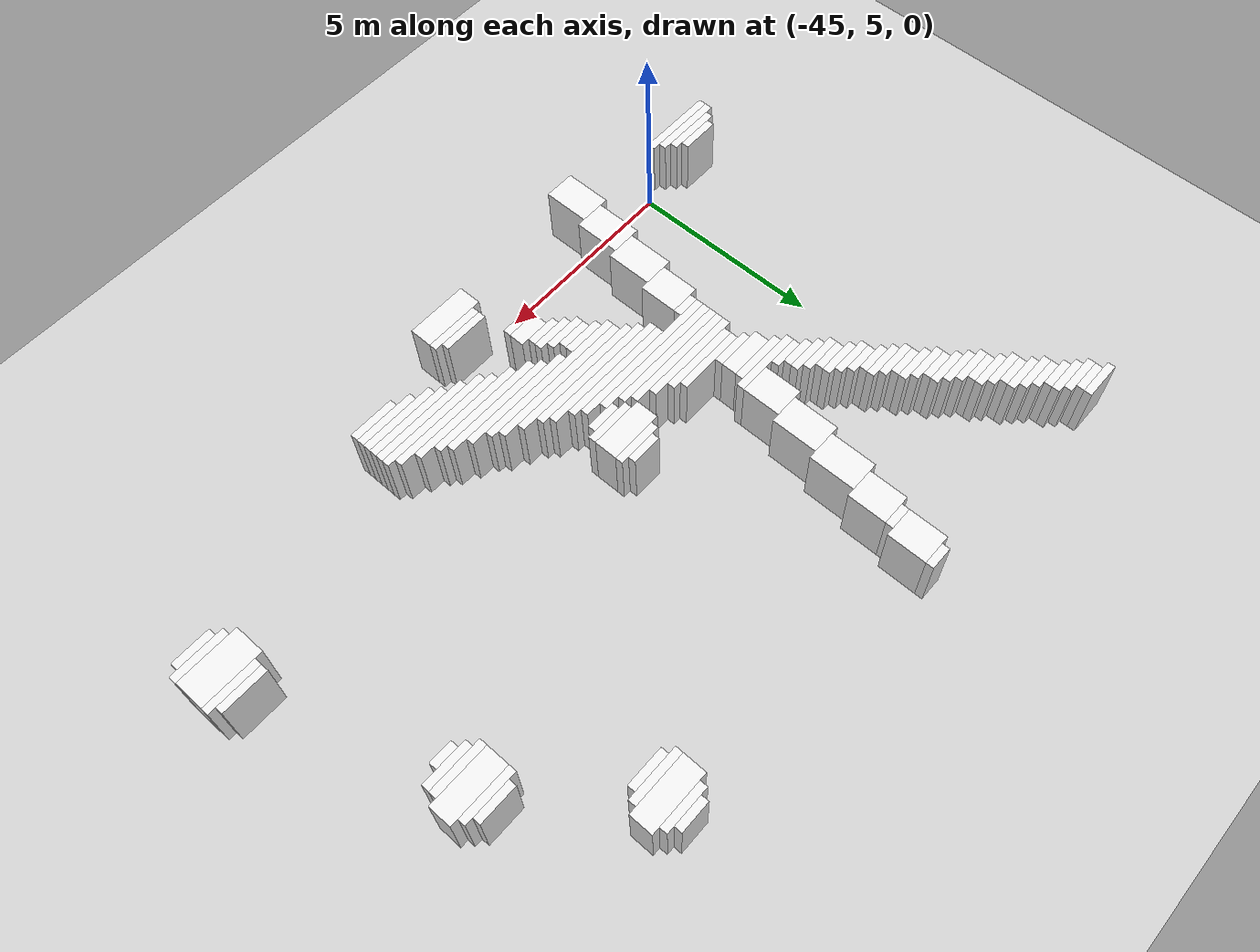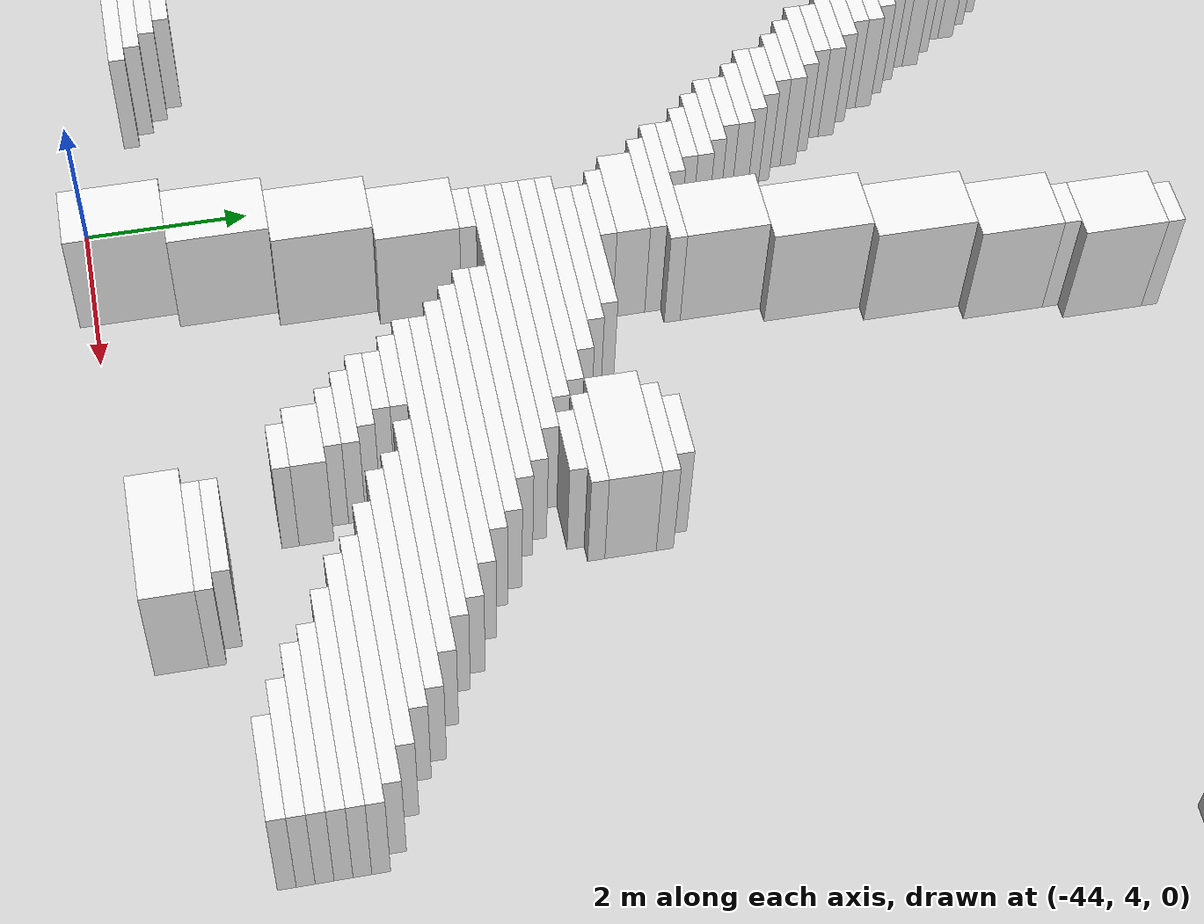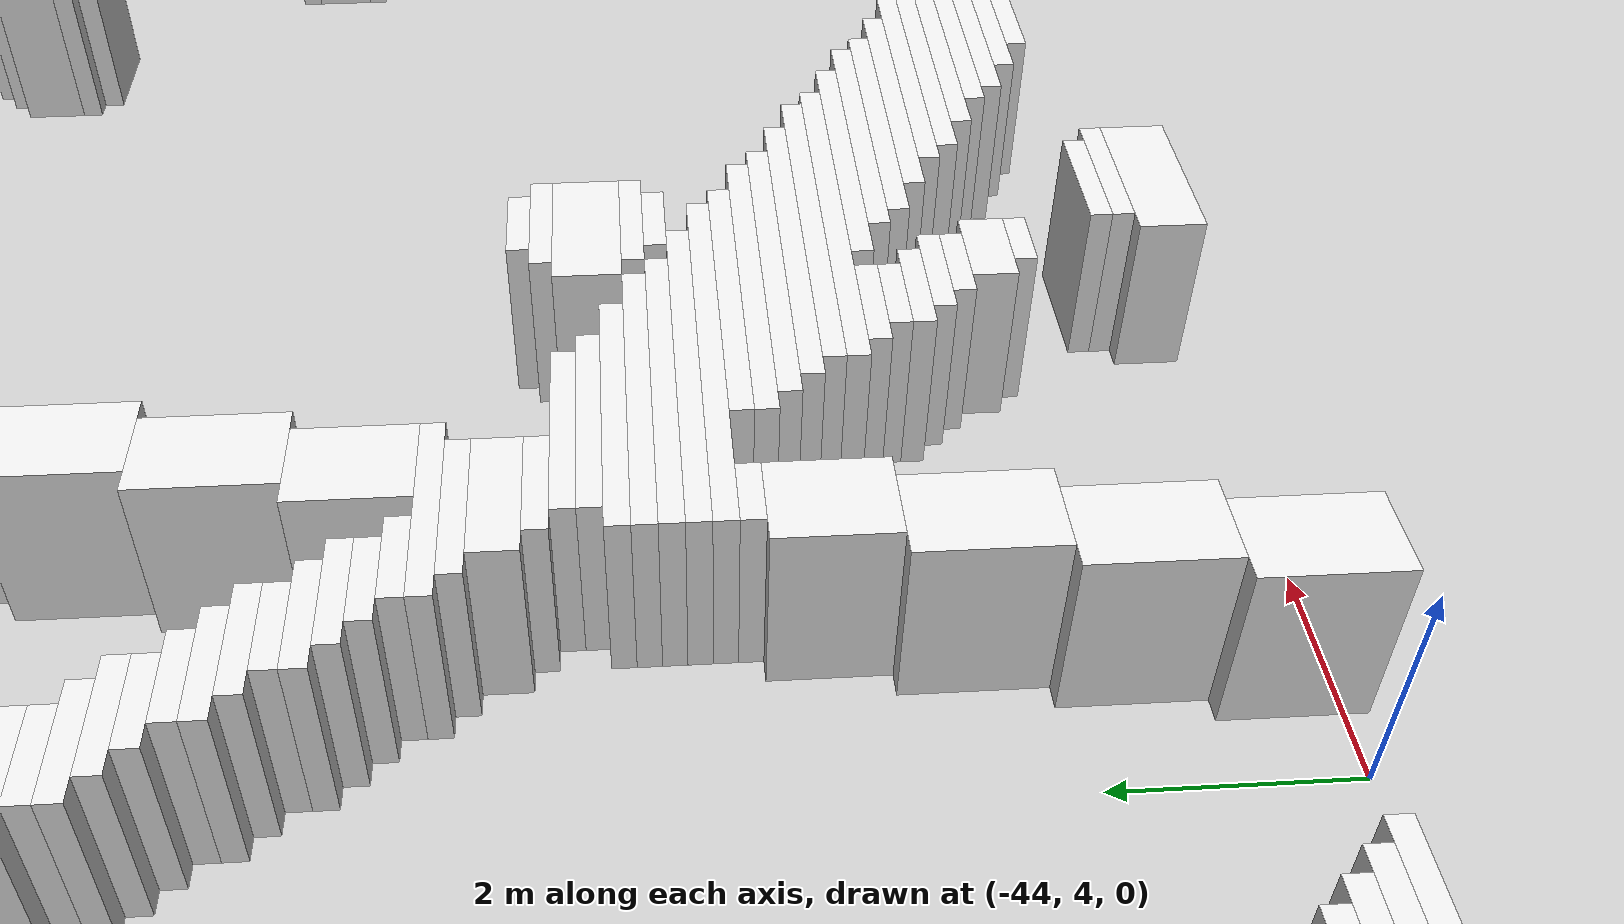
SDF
<sdf version="1.7">
 <world name="default">
  <model name="ground_plane">
   <static>1</static>
   <link name="link">
    <collision name="collision">
     <geometry><plane><normal>0 0 1</normal><size>120 120</size></plane></geometry>
    </collision>
    <visual name="visual">
     <geometry><plane><normal>0 0 1</normal><size>120 120</size></plane></geometry>
     <material>
      <script><uri>file://media/materials/scripts/gazebo.material</uri><name>Gazebo/Grey</name></script>
     </material>
    </visual>
   </link>
  </model>
  <model name="random_complex_02_model">
   <static>1</static>
   <link name="obs_1319">
    <pose>-46.9000 16.9000 0.8000 0 0 0</pose>
    <collision name="obs_1319_col"><geometry><box><size>1.0000 0.2000 1.6000</size></box></geometry></collision>
    <visual name="obs_1319_vis">
     <geometry><box><size>1.0000 0.2000 1.6000</size></box></geometry>
     <material>
      <script><uri>file://media/materials/scripts/gazebo.material</uri><name>Gazebo/White</name></script>
     </material>
    </visual>
   </link>
   <link name="obs_1325">
    <pose>-46.8000 16.7000 0.8000 0 0 0</pose>
    <collision name="obs_1325_col"><geometry><box><size>0.8000 0.2000 1.6000</size></box></geometry></collision>
    <visual name="obs_1325_vis">
     <geometry><box><size>0.8000 0.2000 1.6000</size></box></geometry>
     <material>
      <script><uri>file://media/materials/scripts/gazebo.material</uri><name>Gazebo/White</name></script>
     </material>
    </visual>
   </link>
   <link name="obs_1326">
    <pose>-40.9000 16.7000 0.8000 0 0 0</pose>
    <collision name="obs_1326_col"><geometry><box><size>0.6000 0.2000 1.6000</size></box></geometry></collision>
    <visual name="obs_1326_vis">
     <geometry><box><size>0.6000 0.2000 1.6000</size></box></geometry>
     <material>
      <script><uri>file://media/materials/scripts/gazebo.material</uri><name>Gazebo/White</name></script>
     </material>
    </visual>
   </link>
   <link name="obs_1333">
    <pose>-46.7000 16.5000 0.8000 0 0 0</pose>
    <collision name="obs_1333_col"><geometry><box><size>1.0000 0.2000 1.6000</size></box></geometry></collision>
    <visual name="obs_1333_vis">
     <geometry><box><size>1.0000 0.2000 1.6000</size></box></geometry>
     <material>
      <script><uri>file://media/materials/scripts/gazebo.material</uri><name>Gazebo/White</name></script>
     </material>
    </visual>
   </link>
   <link name="obs_1339">
    <pose>-46.5000 16.3000 0.8000 0 0 0</pose>
    <collision name="obs_1339_col"><geometry><box><size>1.0000 0.2000 1.6000</size></box></geometry></collision>
    <visual name="obs_1339_vis">
     <geometry><box><size>1.0000 0.2000 1.6000</size></box></geometry>
     <material>
      <script><uri>file://media/materials/scripts/gazebo.material</uri><name>Gazebo/White</name></script>
     </material>
    </visual>
   </link>
   <link name="obs_1340">
    <pose>-33.4000 16.3000 0.8000 0 0 0</pose>
    <collision name="obs_1340_col"><geometry><box><size>0.8000 0.2000 1.6000</size></box></geometry></collision>
    <visual name="obs_1340_vis">
     <geometry><box><size>0.8000 0.2000 1.6000</size></box></geometry>
     <material>
      <script><uri>file://media/materials/scripts/gazebo.material</uri><name>Gazebo/White</name></script>
     </material>
    </visual>
   </link>
   <link name="obs_1346">
    <pose>-46.4000 16.1000 0.8000 0 0 0</pose>
    <collision name="obs_1346_col"><geometry><box><size>0.8000 0.2000 1.6000</size></box></geometry></collision>
    <visual name="obs_1346_vis">
     <geometry><box><size>0.8000 0.2000 1.6000</size></box></geometry>
     <material>
      <script><uri>file://media/materials/scripts/gazebo.material</uri><name>Gazebo/White</name></script>
     </material>
    </visual>
   </link>
   <link name="obs_1347">
    <pose>-33.4000 16.1000 0.8000 0 0 0</pose>
    <collision name="obs_1347_col"><geometry><box><size>1.2000 0.2000 1.6000</size></box></geometry></collision>
    <visual name="obs_1347_vis">
     <geometry><box><size>1.2000 0.2000 1.6000</size></box></geometry>
     <material>
      <script><uri>file://media/materials/scripts/gazebo.material</uri><name>Gazebo/White</name></script>
     </material>
    </visual>
   </link>
   <link name="obs_1352">
    <pose>-46.2000 15.9000 0.8000 0 0 0</pose>
    <collision name="obs_1352_col"><geometry><box><size>0.8000 0.2000 1.6000</size></box></geometry></collision>
    <visual name="obs_1352_vis">
     <geometry><box><size>0.8000 0.2000 1.6000</size></box></geometry>
     <material>
      <script><uri>file://media/materials/scripts/gazebo.material</uri><name>Gazebo/White</name></script>
     </material>
    </visual>
   </link>
   <link name="obs_1356">
    <pose>-41.0000 16.1000 0.8000 0 0 0</pose>
    <collision name="obs_1356_col"><geometry><box><size>0.8000 1.0000 1.6000</size></box></geometry></collision>
    <visual name="obs_1356_vis">
     <geometry><box><size>0.8000 1.0000 1.6000</size></box></geometry>
     <material>
      <script><uri>file://media/materials/scripts/gazebo.material</uri><name>Gazebo/White</name></script>
     </material>
    </visual>
   </link>
   <link name="obs_1358">
    <pose>-46.1000 15.7000 0.8000 0 0 0</pose>
    <collision name="obs_1358_col"><geometry><box><size>1.0000 0.2000 1.6000</size></box></geometry></collision>
    <visual name="obs_1358_vis">
     <geometry><box><size>1.0000 0.2000 1.6000</size></box></geometry>
     <material>
      <script><uri>file://media/materials/scripts/gazebo.material</uri><name>Gazebo/White</name></script>
     </material>
    </visual>
   </link>
   <link name="obs_1361">
    <pose>-33.4000 15.7000 0.8000 0 0 0</pose>
    <collision name="obs_1361_col"><geometry><box><size>1.6000 0.6000 1.6000</size></box></geometry></collision>
    <visual name="obs_1361_vis">
     <geometry><box><size>1.6000 0.6000 1.6000</size></box></geometry>
     <material>
      <script><uri>file://media/materials/scripts/gazebo.material</uri><name>Gazebo/White</name></script>
     </material>
    </visual>
   </link>
   <link name="obs_1363">
    <pose>-45.9000 15.5000 0.8000 0 0 0</pose>
    <collision name="obs_1363_col"><geometry><box><size>1.0000 0.2000 1.6000</size></box></geometry></collision>
    <visual name="obs_1363_vis">
     <geometry><box><size>1.0000 0.2000 1.6000</size></box></geometry>
     <material>
      <script><uri>file://media/materials/scripts/gazebo.material</uri><name>Gazebo/White</name></script>
     </material>
    </visual>
   </link>
   <link name="obs_1364">
    <pose>-41.1000 15.5000 0.8000 0 0 0</pose>
    <collision name="obs_1364_col"><geometry><box><size>0.6000 0.2000 1.6000</size></box></geometry></collision>
    <visual name="obs_1364_vis">
     <geometry><box><size>0.6000 0.2000 1.6000</size></box></geometry>
     <material>
      <script><uri>file://media/materials/scripts/gazebo.material</uri><name>Gazebo/White</name></script>
     </material>
    </visual>
   </link>
   <link name="obs_1369">
    <pose>-45.8000 15.3000 0.8000 0 0 0</pose>
    <collision name="obs_1369_col"><geometry><box><size>0.8000 0.2000 1.6000</size></box></geometry></collision>
    <visual name="obs_1369_vis">
     <geometry><box><size>0.8000 0.2000 1.6000</size></box></geometry>
     <material>
      <script><uri>file://media/materials/scripts/gazebo.material</uri><name>Gazebo/White</name></script>
     </material>
    </visual>
   </link>
   <link name="obs_1370">
    <pose>-33.5000 15.3000 0.8000 0 0 0</pose>
    <collision name="obs_1370_col"><geometry><box><size>1.4000 0.2000 1.6000</size></box></geometry></collision>
    <visual name="obs_1370_vis">
     <geometry><box><size>1.4000 0.2000 1.6000</size></box></geometry>
     <material>
      <script><uri>file://media/materials/scripts/gazebo.material</uri><name>Gazebo/White</name></script>
     </material>
    </visual>
   </link>
   <link name="obs_1374">
    <pose>-45.7000 15.1000 0.8000 0 0 0</pose>
    <collision name="obs_1374_col"><geometry><box><size>1.0000 0.2000 1.6000</size></box></geometry></collision>
    <visual name="obs_1374_vis">
     <geometry><box><size>1.0000 0.2000 1.6000</size></box></geometry>
     <material>
      <script><uri>file://media/materials/scripts/gazebo.material</uri><name>Gazebo/White</name></script>
     </material>
    </visual>
   </link>
   <link name="obs_1375">
    <pose>-33.5000 15.1000 0.8000 0 0 0</pose>
    <collision name="obs_1375_col"><geometry><box><size>1.0000 0.2000 1.6000</size></box></geometry></collision>
    <visual name="obs_1375_vis">
     <geometry><box><size>1.0000 0.2000 1.6000</size></box></geometry>
     <material>
      <script><uri>file://media/materials/scripts/gazebo.material</uri><name>Gazebo/White</name></script>
     </material>
    </visual>
   </link>
   <link name="obs_1383">
    <pose>-45.5000 14.9000 0.8000 0 0 0</pose>
    <collision name="obs_1383_col"><geometry><box><size>1.0000 0.2000 1.6000</size></box></geometry></collision>
    <visual name="obs_1383_vis">
     <geometry><box><size>1.0000 0.2000 1.6000</size></box></geometry>
     <material>
      <script><uri>file://media/materials/scripts/gazebo.material</uri><name>Gazebo/White</name></script>
     </material>
    </visual>
   </link>
   <link name="obs_1388">
    <pose>-45.4000 14.7000 0.8000 0 0 0</pose>
    <collision name="obs_1388_col"><geometry><box><size>0.8000 0.2000 1.6000</size></box></geometry></collision>
    <visual name="obs_1388_vis">
     <geometry><box><size>0.8000 0.2000 1.6000</size></box></geometry>
     <material>
      <script><uri>file://media/materials/scripts/gazebo.material</uri><name>Gazebo/White</name></script>
     </material>
    </visual>
   </link>
   <link name="obs_1392">
    <pose>-41.2000 14.9000 0.8000 0 0 0</pose>
    <collision name="obs_1392_col"><geometry><box><size>0.8000 1.0000 1.6000</size></box></geometry></collision>
    <visual name="obs_1392_vis">
     <geometry><box><size>0.8000 1.0000 1.6000</size></box></geometry>
     <material>
      <script><uri>file://media/materials/scripts/gazebo.material</uri><name>Gazebo/White</name></script>
     </material>
    </visual>
   </link>
   <link name="obs_1394">
    <pose>-45.3000 14.5000 0.8000 0 0 0</pose>
    <collision name="obs_1394_col"><geometry><box><size>1.0000 0.2000 1.6000</size></box></geometry></collision>
    <visual name="obs_1394_vis">
     <geometry><box><size>1.0000 0.2000 1.6000</size></box></geometry>
     <material>
      <script><uri>file://media/materials/scripts/gazebo.material</uri><name>Gazebo/White</name></script>
     </material>
    </visual>
   </link>
   <link name="obs_1402">
    <pose>-45.1000 14.3000 0.8000 0 0 0</pose>
    <collision name="obs_1402_col"><geometry><box><size>1.0000 0.2000 1.6000</size></box></geometry></collision>
    <visual name="obs_1402_vis">
     <geometry><box><size>1.0000 0.2000 1.6000</size></box></geometry>
     <material>
      <script><uri>file://media/materials/scripts/gazebo.material</uri><name>Gazebo/White</name></script>
     </material>
    </visual>
   </link>
   <link name="obs_1408">
    <pose>-44.9000 14.1000 0.8000 0 0 0</pose>
    <collision name="obs_1408_col"><geometry><box><size>1.0000 0.2000 1.6000</size></box></geometry></collision>
    <visual name="obs_1408_vis">
     <geometry><box><size>1.0000 0.2000 1.6000</size></box></geometry>
     <material>
      <script><uri>file://media/materials/scripts/gazebo.material</uri><name>Gazebo/White</name></script>
     </material>
    </visual>
   </link>
   <link name="obs_1417">
    <pose>-44.8000 13.9000 0.8000 0 0 0</pose>
    <collision name="obs_1417_col"><geometry><box><size>0.8000 0.2000 1.6000</size></box></geometry></collision>
    <visual name="obs_1417_vis">
     <geometry><box><size>0.8000 0.2000 1.6000</size></box></geometry>
     <material>
      <script><uri>file://media/materials/scripts/gazebo.material</uri><name>Gazebo/White</name></script>
     </material>
    </visual>
   </link>
   <link name="obs_1422">
    <pose>-44.7000 13.7000 0.8000 0 0 0</pose>
    <collision name="obs_1422_col"><geometry><box><size>1.0000 0.2000 1.6000</size></box></geometry></collision>
    <visual name="obs_1422_vis">
     <geometry><box><size>1.0000 0.2000 1.6000</size></box></geometry>
     <material>
      <script><uri>file://media/materials/scripts/gazebo.material</uri><name>Gazebo/White</name></script>
     </material>
    </visual>
   </link>
   <link name="obs_1429">
    <pose>-44.5000 13.5000 0.8000 0 0 0</pose>
    <collision name="obs_1429_col"><geometry><box><size>1.0000 0.2000 1.6000</size></box></geometry></collision>
    <visual name="obs_1429_vis">
     <geometry><box><size>1.0000 0.2000 1.6000</size></box></geometry>
     <material>
      <script><uri>file://media/materials/scripts/gazebo.material</uri><name>Gazebo/White</name></script>
     </material>
    </visual>
   </link>
   <link name="obs_1431">
    <pose>-41.4000 13.8000 0.8000 0 0 0</pose>
    <collision name="obs_1431_col"><geometry><box><size>0.8000 1.2000 1.6000</size></box></geometry></collision>
    <visual name="obs_1431_vis">
     <geometry><box><size>0.8000 1.2000 1.6000</size></box></geometry>
     <material>
      <script><uri>file://media/materials/scripts/gazebo.material</uri><name>Gazebo/White</name></script>
     </material>
    </visual>
   </link>
   <link name="obs_1434">
    <pose>-44.4000 13.3000 0.8000 0 0 0</pose>
    <collision name="obs_1434_col"><geometry><box><size>0.8000 0.2000 1.6000</size></box></geometry></collision>
    <visual name="obs_1434_vis">
     <geometry><box><size>0.8000 0.2000 1.6000</size></box></geometry>
     <material>
      <script><uri>file://media/materials/scripts/gazebo.material</uri><name>Gazebo/White</name></script>
     </material>
    </visual>
   </link>
   <link name="obs_1435">
    <pose>-31.1000 13.3000 0.8000 0 0 0</pose>
    <collision name="obs_1435_col"><geometry><box><size>1.0000 0.2000 1.6000</size></box></geometry></collision>
    <visual name="obs_1435_vis">
     <geometry><box><size>1.0000 0.2000 1.6000</size></box></geometry>
     <material>
      <script><uri>file://media/materials/scripts/gazebo.material</uri><name>Gazebo/White</name></script>
     </material>
    </visual>
   </link>
   <link name="obs_1438">
    <pose>-44.3000 13.1000 0.8000 0 0 0</pose>
    <collision name="obs_1438_col"><geometry><box><size>1.0000 0.2000 1.6000</size></box></geometry></collision>
    <visual name="obs_1438_vis">
     <geometry><box><size>1.0000 0.2000 1.6000</size></box></geometry>
     <material>
      <script><uri>file://media/materials/scripts/gazebo.material</uri><name>Gazebo/White</name></script>
     </material>
    </visual>
   </link>
   <link name="obs_1439">
    <pose>-31.1000 13.1000 0.8000 0 0 0</pose>
    <collision name="obs_1439_col"><geometry><box><size>1.4000 0.2000 1.6000</size></box></geometry></collision>
    <visual name="obs_1439_vis">
     <geometry><box><size>1.4000 0.2000 1.6000</size></box></geometry>
     <material>
      <script><uri>file://media/materials/scripts/gazebo.material</uri><name>Gazebo/White</name></script>
     </material>
    </visual>
   </link>
   <link name="obs_1445">
    <pose>-44.1000 12.9000 0.8000 0 0 0</pose>
    <collision name="obs_1445_col"><geometry><box><size>1.0000 0.2000 1.6000</size></box></geometry></collision>
    <visual name="obs_1445_vis">
     <geometry><box><size>1.0000 0.2000 1.6000</size></box></geometry>
     <material>
      <script><uri>file://media/materials/scripts/gazebo.material</uri><name>Gazebo/White</name></script>
     </material>
    </visual>
   </link>
   <link name="obs_1448">
    <pose>-44.0000 12.7000 0.8000 0 0 0</pose>
    <collision name="obs_1448_col"><geometry><box><size>0.8000 0.2000 1.6000</size></box></geometry></collision>
    <visual name="obs_1448_vis">
     <geometry><box><size>0.8000 0.2000 1.6000</size></box></geometry>
     <material>
      <script><uri>file://media/materials/scripts/gazebo.material</uri><name>Gazebo/White</name></script>
     </material>
    </visual>
   </link>
   <link name="obs_1453">
    <pose>-31.0000 12.7000 0.8000 0 0 0</pose>
    <collision name="obs_1453_col"><geometry><box><size>1.6000 0.6000 1.6000</size></box></geometry></collision>
    <visual name="obs_1453_vis">
     <geometry><box><size>1.6000 0.6000 1.6000</size></box></geometry>
     <material>
      <script><uri>file://media/materials/scripts/gazebo.material</uri><name>Gazebo/White</name></script>
     </material>
    </visual>
   </link>
   <link name="obs_1455">
    <pose>-43.8000 12.5000 0.8000 0 0 0</pose>
    <collision name="obs_1455_col"><geometry><box><size>0.8000 0.2000 1.6000</size></box></geometry></collision>
    <visual name="obs_1455_vis">
     <geometry><box><size>0.8000 0.2000 1.6000</size></box></geometry>
     <material>
      <script><uri>file://media/materials/scripts/gazebo.material</uri><name>Gazebo/White</name></script>
     </material>
    </visual>
   </link>
   <link name="obs_1460">
    <pose>-43.7000 12.3000 0.8000 0 0 0</pose>
    <collision name="obs_1460_col"><geometry><box><size>1.0000 0.2000 1.6000</size></box></geometry></collision>
    <visual name="obs_1460_vis">
     <geometry><box><size>1.0000 0.2000 1.6000</size></box></geometry>
     <material>
      <script><uri>file://media/materials/scripts/gazebo.material</uri><name>Gazebo/White</name></script>
     </material>
    </visual>
   </link>
   <link name="obs_1461">
    <pose>-31.1000 12.3000 0.8000 0 0 0</pose>
    <collision name="obs_1461_col"><geometry><box><size>1.4000 0.2000 1.6000</size></box></geometry></collision>
    <visual name="obs_1461_vis">
     <geometry><box><size>1.4000 0.2000 1.6000</size></box></geometry>
     <material>
      <script><uri>file://media/materials/scripts/gazebo.material</uri><name>Gazebo/White</name></script>
     </material>
    </visual>
   </link>
   <link name="obs_1465">
    <pose>-41.6000 12.6000 0.8000 0 0 0</pose>
    <collision name="obs_1465_col"><geometry><box><size>0.8000 1.2000 1.6000</size></box></geometry></collision>
    <visual name="obs_1465_vis">
     <geometry><box><size>0.8000 1.2000 1.6000</size></box></geometry>
     <material>
      <script><uri>file://media/materials/scripts/gazebo.material</uri><name>Gazebo/White</name></script>
     </material>
    </visual>
   </link>
   <link name="obs_1467">
    <pose>-43.5000 12.1000 0.8000 0 0 0</pose>
    <collision name="obs_1467_col"><geometry><box><size>1.0000 0.2000 1.6000</size></box></geometry></collision>
    <visual name="obs_1467_vis">
     <geometry><box><size>1.0000 0.2000 1.6000</size></box></geometry>
     <material>
      <script><uri>file://media/materials/scripts/gazebo.material</uri><name>Gazebo/White</name></script>
     </material>
    </visual>
   </link>
   <link name="obs_1468">
    <pose>-31.0000 12.1000 0.8000 0 0 0</pose>
    <collision name="obs_1468_col"><geometry><box><size>1.2000 0.2000 1.6000</size></box></geometry></collision>
    <visual name="obs_1468_vis">
     <geometry><box><size>1.2000 0.2000 1.6000</size></box></geometry>
     <material>
      <script><uri>file://media/materials/scripts/gazebo.material</uri><name>Gazebo/White</name></script>
     </material>
    </visual>
   </link>
   <link name="obs_1477">
    <pose>-43.4000 11.9000 0.8000 0 0 0</pose>
    <collision name="obs_1477_col"><geometry><box><size>0.8000 0.2000 1.6000</size></box></geometry></collision>
    <visual name="obs_1477_vis">
     <geometry><box><size>0.8000 0.2000 1.6000</size></box></geometry>
     <material>
      <script><uri>file://media/materials/scripts/gazebo.material</uri><name>Gazebo/White</name></script>
     </material>
    </visual>
   </link>
   <link name="obs_1478">
    <pose>-31.1000 11.9000 0.8000 0 0 0</pose>
    <collision name="obs_1478_col"><geometry><box><size>0.6000 0.2000 1.6000</size></box></geometry></collision>
    <visual name="obs_1478_vis">
     <geometry><box><size>0.6000 0.2000 1.6000</size></box></geometry>
     <material>
      <script><uri>file://media/materials/scripts/gazebo.material</uri><name>Gazebo/White</name></script>
     </material>
    </visual>
   </link>
   <link name="obs_1486">
    <pose>-43.3000 11.7000 0.8000 0 0 0</pose>
    <collision name="obs_1486_col"><geometry><box><size>1.0000 0.2000 1.6000</size></box></geometry></collision>
    <visual name="obs_1486_vis">
     <geometry><box><size>1.0000 0.2000 1.6000</size></box></geometry>
     <material>
      <script><uri>file://media/materials/scripts/gazebo.material</uri><name>Gazebo/White</name></script>
     </material>
    </visual>
   </link>
   <link name="obs_1493">
    <pose>-43.1000 11.5000 0.8000 0 0 0</pose>
    <collision name="obs_1493_col"><geometry><box><size>1.0000 0.2000 1.6000</size></box></geometry></collision>
    <visual name="obs_1493_vis">
     <geometry><box><size>1.0000 0.2000 1.6000</size></box></geometry>
     <material>
      <script><uri>file://media/materials/scripts/gazebo.material</uri><name>Gazebo/White</name></script>
     </material>
    </visual>
   </link>
   <link name="obs_1496">
    <pose>-43.0000 11.3000 0.8000 0 0 0</pose>
    <collision name="obs_1496_col"><geometry><box><size>0.8000 0.2000 1.6000</size></box></geometry></collision>
    <visual name="obs_1496_vis">
     <geometry><box><size>0.8000 0.2000 1.6000</size></box></geometry>
     <material>
      <script><uri>file://media/materials/scripts/gazebo.material</uri><name>Gazebo/White</name></script>
     </material>
    </visual>
   </link>
   <link name="obs_1499">
    <pose>-41.8000 11.5000 0.8000 0 0 0</pose>
    <collision name="obs_1499_col"><geometry><box><size>0.8000 1.0000 1.6000</size></box></geometry></collision>
    <visual name="obs_1499_vis">
     <geometry><box><size>0.8000 1.0000 1.6000</size></box></geometry>
     <material>
      <script><uri>file://media/materials/scripts/gazebo.material</uri><name>Gazebo/White</name></script>
     </material>
    </visual>
   </link>
   <link name="obs_1503">
    <pose>-42.8000 11.1000 0.8000 0 0 0</pose>
    <collision name="obs_1503_col"><geometry><box><size>0.8000 0.2000 1.6000</size></box></geometry></collision>
    <visual name="obs_1503_vis">
     <geometry><box><size>0.8000 0.2000 1.6000</size></box></geometry>
     <material>
      <script><uri>file://media/materials/scripts/gazebo.material</uri><name>Gazebo/White</name></script>
     </material>
    </visual>
   </link>
   <link name="obs_1507">
    <pose>-42.3000 10.9000 0.8000 0 0 0</pose>
    <collision name="obs_1507_col"><geometry><box><size>1.8000 0.2000 1.6000</size></box></geometry></collision>
    <visual name="obs_1507_vis">
     <geometry><box><size>1.8000 0.2000 1.6000</size></box></geometry>
     <material>
      <script><uri>file://media/materials/scripts/gazebo.material</uri><name>Gazebo/White</name></script>
     </material>
    </visual>
   </link>
   <link name="obs_1511">
    <pose>-42.3000 10.7000 0.8000 0 0 0</pose>
    <collision name="obs_1511_col"><geometry><box><size>1.4000 0.2000 1.6000</size></box></geometry></collision>
    <visual name="obs_1511_vis">
     <geometry><box><size>1.4000 0.2000 1.6000</size></box></geometry>
     <material>
      <script><uri>file://media/materials/scripts/gazebo.material</uri><name>Gazebo/White</name></script>
     </material>
    </visual>
   </link>
   <link name="obs_1524">
    <pose>-42.2000 10.4000 0.8000 0 0 0</pose>
    <collision name="obs_1524_col"><geometry><box><size>1.2000 0.4000 1.6000</size></box></geometry></collision>
    <visual name="obs_1524_vis">
     <geometry><box><size>1.2000 0.4000 1.6000</size></box></geometry>
     <material>
      <script><uri>file://media/materials/scripts/gazebo.material</uri><name>Gazebo/White</name></script>
     </material>
    </visual>
   </link>
   <link name="obs_1525">
    <pose>-38.8000 10.3000 0.8000 0 0 0</pose>
    <collision name="obs_1525_col"><geometry><box><size>0.8000 0.2000 1.6000</size></box></geometry></collision>
    <visual name="obs_1525_vis">
     <geometry><box><size>0.8000 0.2000 1.6000</size></box></geometry>
     <material>
      <script><uri>file://media/materials/scripts/gazebo.material</uri><name>Gazebo/White</name></script>
     </material>
    </visual>
   </link>
   <link name="obs_1533">
    <pose>-42.1000 10.1000 0.8000 0 0 0</pose>
    <collision name="obs_1533_col"><geometry><box><size>1.0000 0.2000 1.6000</size></box></geometry></collision>
    <visual name="obs_1533_vis">
     <geometry><box><size>1.0000 0.2000 1.6000</size></box></geometry>
     <material>
      <script><uri>file://media/materials/scripts/gazebo.material</uri><name>Gazebo/White</name></script>
     </material>
    </visual>
   </link>
   <link name="obs_1534">
    <pose>-38.8000 10.1000 0.8000 0 0 0</pose>
    <collision name="obs_1534_col"><geometry><box><size>1.2000 0.2000 1.6000</size></box></geometry></collision>
    <visual name="obs_1534_vis">
     <geometry><box><size>1.2000 0.2000 1.6000</size></box></geometry>
     <material>
      <script><uri>file://media/materials/scripts/gazebo.material</uri><name>Gazebo/White</name></script>
     </material>
    </visual>
   </link>
   <link name="obs_1541">
    <pose>-41.5000 9.9000 0.8000 0 0 0</pose>
    <collision name="obs_1541_col"><geometry><box><size>1.8000 0.2000 1.6000</size></box></geometry></collision>
    <visual name="obs_1541_vis">
     <geometry><box><size>1.8000 0.2000 1.6000</size></box></geometry>
     <material>
      <script><uri>file://media/materials/scripts/gazebo.material</uri><name>Gazebo/White</name></script>
     </material>
    </visual>
   </link>
   <link name="obs_1551">
    <pose>-41.4000 9.7000 0.8000 0 0 0</pose>
    <collision name="obs_1551_col"><geometry><box><size>2.0000 0.2000 1.6000</size></box></geometry></collision>
    <visual name="obs_1551_vis">
     <geometry><box><size>2.0000 0.2000 1.6000</size></box></geometry>
     <material>
      <script><uri>file://media/materials/scripts/gazebo.material</uri><name>Gazebo/White</name></script>
     </material>
    </visual>
   </link>
   <link name="obs_1560">
    <pose>-38.9000 9.7000 0.8000 0 0 0</pose>
    <collision name="obs_1560_col"><geometry><box><size>1.4000 0.6000 1.6000</size></box></geometry></collision>
    <visual name="obs_1560_vis">
     <geometry><box><size>1.4000 0.6000 1.6000</size></box></geometry>
     <material>
      <script><uri>file://media/materials/scripts/gazebo.material</uri><name>Gazebo/White</name></script>
     </material>
    </visual>
   </link>
   <link name="obs_1561">
    <pose>-41.3000 9.5000 0.8000 0 0 0</pose>
    <collision name="obs_1561_col"><geometry><box><size>2.6000 0.2000 1.6000</size></box></geometry></collision>
    <visual name="obs_1561_vis">
     <geometry><box><size>2.6000 0.2000 1.6000</size></box></geometry>
     <material>
      <script><uri>file://media/materials/scripts/gazebo.material</uri><name>Gazebo/White</name></script>
     </material>
    </visual>
   </link>
   <link name="obs_1568">
    <pose>-41.1000 9.3000 0.8000 0 0 0</pose>
    <collision name="obs_1568_col"><geometry><box><size>3.0000 0.2000 1.6000</size></box></geometry></collision>
    <visual name="obs_1568_vis">
     <geometry><box><size>3.0000 0.2000 1.6000</size></box></geometry>
     <material>
      <script><uri>file://media/materials/scripts/gazebo.material</uri><name>Gazebo/White</name></script>
     </material>
    </visual>
   </link>
   <link name="obs_1569">
    <pose>-38.8000 9.3000 0.8000 0 0 0</pose>
    <collision name="obs_1569_col"><geometry><box><size>1.2000 0.2000 1.6000</size></box></geometry></collision>
    <visual name="obs_1569_vis">
     <geometry><box><size>1.2000 0.2000 1.6000</size></box></geometry>
     <material>
      <script><uri>file://media/materials/scripts/gazebo.material</uri><name>Gazebo/White</name></script>
     </material>
    </visual>
   </link>
   <link name="obs_1577">
    <pose>-41.0000 9.1000 0.8000 0 0 0</pose>
    <collision name="obs_1577_col"><geometry><box><size>3.2000 0.2000 1.6000</size></box></geometry></collision>
    <visual name="obs_1577_vis">
     <geometry><box><size>3.2000 0.2000 1.6000</size></box></geometry>
     <material>
      <script><uri>file://media/materials/scripts/gazebo.material</uri><name>Gazebo/White</name></script>
     </material>
    </visual>
   </link>
   <link name="obs_1578">
    <pose>-38.8000 9.1000 0.8000 0 0 0</pose>
    <collision name="obs_1578_col"><geometry><box><size>0.8000 0.2000 1.6000</size></box></geometry></collision>
    <visual name="obs_1578_vis">
     <geometry><box><size>0.8000 0.2000 1.6000</size></box></geometry>
     <material>
      <script><uri>file://media/materials/scripts/gazebo.material</uri><name>Gazebo/White</name></script>
     </material>
    </visual>
   </link>
   <link name="obs_1587">
    <pose>-40.8000 8.9000 0.8000 0 0 0</pose>
    <collision name="obs_1587_col"><geometry><box><size>3.6000 0.2000 1.6000</size></box></geometry></collision>
    <visual name="obs_1587_vis">
     <geometry><box><size>3.6000 0.2000 1.6000</size></box></geometry>
     <material>
      <script><uri>file://media/materials/scripts/gazebo.material</uri><name>Gazebo/White</name></script>
     </material>
    </visual>
   </link>
   <link name="obs_1598">
    <pose>-40.6000 8.7000 0.8000 0 0 0</pose>
    <collision name="obs_1598_col"><geometry><box><size>4.0000 0.2000 1.6000</size></box></geometry></collision>
    <visual name="obs_1598_vis">
     <geometry><box><size>4.0000 0.2000 1.6000</size></box></geometry>
     <material>
      <script><uri>file://media/materials/scripts/gazebo.material</uri><name>Gazebo/White</name></script>
     </material>
    </visual>
   </link>
   <link name="obs_1607">
    <pose>-42.3000 8.5000 0.8000 0 0 0</pose>
    <collision name="obs_1607_col"><geometry><box><size>0.6000 0.2000 1.6000</size></box></geometry></collision>
    <visual name="obs_1607_vis">
     <geometry><box><size>0.6000 0.2000 1.6000</size></box></geometry>
     <material>
      <script><uri>file://media/materials/scripts/gazebo.material</uri><name>Gazebo/White</name></script>
     </material>
    </visual>
   </link>
   <link name="obs_1608">
    <pose>-39.9000 8.5000 0.8000 0 0 0</pose>
    <collision name="obs_1608_col"><geometry><box><size>3.0000 0.2000 1.6000</size></box></geometry></collision>
    <visual name="obs_1608_vis">
     <geometry><box><size>3.0000 0.2000 1.6000</size></box></geometry>
     <material>
      <script><uri>file://media/materials/scripts/gazebo.material</uri><name>Gazebo/White</name></script>
     </material>
    </visual>
   </link>
   <link name="obs_1614">
    <pose>-39.7000 8.3000 0.8000 0 0 0</pose>
    <collision name="obs_1614_col"><geometry><box><size>3.4000 0.2000 1.6000</size></box></geometry></collision>
    <visual name="obs_1614_vis">
     <geometry><box><size>3.4000 0.2000 1.6000</size></box></geometry>
     <material>
      <script><uri>file://media/materials/scripts/gazebo.material</uri><name>Gazebo/White</name></script>
     </material>
    </visual>
   </link>
   <link name="obs_1623">
    <pose>-39.5000 8.1000 0.8000 0 0 0</pose>
    <collision name="obs_1623_col"><geometry><box><size>3.4000 0.2000 1.6000</size></box></geometry></collision>
    <visual name="obs_1623_vis">
     <geometry><box><size>3.4000 0.2000 1.6000</size></box></geometry>
     <material>
      <script><uri>file://media/materials/scripts/gazebo.material</uri><name>Gazebo/White</name></script>
     </material>
    </visual>
   </link>
   <link name="obs_1634">
    <pose>-39.2000 7.9000 0.8000 0 0 0</pose>
    <collision name="obs_1634_col"><geometry><box><size>3.6000 0.2000 1.6000</size></box></geometry></collision>
    <visual name="obs_1634_vis">
     <geometry><box><size>3.6000 0.2000 1.6000</size></box></geometry>
     <material>
      <script><uri>file://media/materials/scripts/gazebo.material</uri><name>Gazebo/White</name></script>
     </material>
    </visual>
   </link>
   <link name="obs_1635">
    <pose>-29.4000 7.9000 0.8000 0 0 0</pose>
    <collision name="obs_1635_col"><geometry><box><size>1.2000 0.2000 1.6000</size></box></geometry></collision>
    <visual name="obs_1635_vis">
     <geometry><box><size>1.2000 0.2000 1.6000</size></box></geometry>
     <material>
      <script><uri>file://media/materials/scripts/gazebo.material</uri><name>Gazebo/White</name></script>
     </material>
    </visual>
   </link>
   <link name="obs_1640">
    <pose>-38.9000 7.7000 0.8000 0 0 0</pose>
    <collision name="obs_1640_col"><geometry><box><size>3.8000 0.2000 1.6000</size></box></geometry></collision>
    <visual name="obs_1640_vis">
     <geometry><box><size>3.8000 0.2000 1.6000</size></box></geometry>
     <material>
      <script><uri>file://media/materials/scripts/gazebo.material</uri><name>Gazebo/White</name></script>
     </material>
    </visual>
   </link>
   <link name="obs_1641">
    <pose>-29.3000 7.7000 0.8000 0 0 0</pose>
    <collision name="obs_1641_col"><geometry><box><size>1.4000 0.2000 1.6000</size></box></geometry></collision>
    <visual name="obs_1641_vis">
     <geometry><box><size>1.4000 0.2000 1.6000</size></box></geometry>
     <material>
      <script><uri>file://media/materials/scripts/gazebo.material</uri><name>Gazebo/White</name></script>
     </material>
    </visual>
   </link>
   <link name="obs_1644">
    <pose>-42.4000 7.9000 0.8000 0 0 0</pose>
    <collision name="obs_1644_col"><geometry><box><size>0.8000 1.0000 1.6000</size></box></geometry></collision>
    <visual name="obs_1644_vis">
     <geometry><box><size>0.8000 1.0000 1.6000</size></box></geometry>
     <material>
      <script><uri>file://media/materials/scripts/gazebo.material</uri><name>Gazebo/White</name></script>
     </material>
    </visual>
   </link>
   <link name="obs_1647">
    <pose>-38.8000 7.5000 0.8000 0 0 0</pose>
    <collision name="obs_1647_col"><geometry><box><size>4.0000 0.2000 1.6000</size></box></geometry></collision>
    <visual name="obs_1647_vis">
     <geometry><box><size>4.0000 0.2000 1.6000</size></box></geometry>
     <material>
      <script><uri>file://media/materials/scripts/gazebo.material</uri><name>Gazebo/White</name></script>
     </material>
    </visual>
   </link>
   <link name="obs_1650">
    <pose>-40.1000 7.3000 0.8000 0 0 0</pose>
    <collision name="obs_1650_col"><geometry><box><size>1.0000 0.2000 1.6000</size></box></geometry></collision>
    <visual name="obs_1650_vis">
     <geometry><box><size>1.0000 0.2000 1.6000</size></box></geometry>
     <material>
      <script><uri>file://media/materials/scripts/gazebo.material</uri><name>Gazebo/White</name></script>
     </material>
    </visual>
   </link>
   <link name="obs_1651">
    <pose>-37.9000 7.3000 0.8000 0 0 0</pose>
    <collision name="obs_1651_col"><geometry><box><size>3.0000 0.2000 1.6000</size></box></geometry></collision>
    <visual name="obs_1651_vis">
     <geometry><box><size>3.0000 0.2000 1.6000</size></box></geometry>
     <material>
      <script><uri>file://media/materials/scripts/gazebo.material</uri><name>Gazebo/White</name></script>
     </material>
    </visual>
   </link>
   <link name="obs_1655">
    <pose>-40.0000 7.1000 0.8000 0 0 0</pose>
    <collision name="obs_1655_col"><geometry><box><size>0.8000 0.2000 1.6000</size></box></geometry></collision>
    <visual name="obs_1655_vis">
     <geometry><box><size>0.8000 0.2000 1.6000</size></box></geometry>
     <material>
      <script><uri>file://media/materials/scripts/gazebo.material</uri><name>Gazebo/White</name></script>
     </material>
    </visual>
   </link>
   <link name="obs_1656">
    <pose>-37.5000 7.1000 0.8000 0 0 0</pose>
    <collision name="obs_1656_col"><geometry><box><size>3.0000 0.2000 1.6000</size></box></geometry></collision>
    <visual name="obs_1656_vis">
     <geometry><box><size>3.0000 0.2000 1.6000</size></box></geometry>
     <material>
      <script><uri>file://media/materials/scripts/gazebo.material</uri><name>Gazebo/White</name></script>
     </material>
    </visual>
   </link>
   <link name="obs_1660">
    <pose>-29.4000 7.2000 0.8000 0 0 0</pose>
    <collision name="obs_1660_col"><geometry><box><size>1.6000 0.8000 1.6000</size></box></geometry></collision>
    <visual name="obs_1660_vis">
     <geometry><box><size>1.6000 0.8000 1.6000</size></box></geometry>
     <material>
      <script><uri>file://media/materials/scripts/gazebo.material</uri><name>Gazebo/White</name></script>
     </material>
    </visual>
   </link>
   <link name="obs_1662">
    <pose>-39.9000 6.9000 0.8000 0 0 0</pose>
    <collision name="obs_1662_col"><geometry><box><size>1.0000 0.2000 1.6000</size></box></geometry></collision>
    <visual name="obs_1662_vis">
     <geometry><box><size>1.0000 0.2000 1.6000</size></box></geometry>
     <material>
      <script><uri>file://media/materials/scripts/gazebo.material</uri><name>Gazebo/White</name></script>
     </material>
    </visual>
   </link>
   <link name="obs_1663">
    <pose>-37.3000 6.9000 0.8000 0 0 0</pose>
    <collision name="obs_1663_col"><geometry><box><size>3.0000 0.2000 1.6000</size></box></geometry></collision>
    <visual name="obs_1663_vis">
     <geometry><box><size>3.0000 0.2000 1.6000</size></box></geometry>
     <material>
      <script><uri>file://media/materials/scripts/gazebo.material</uri><name>Gazebo/White</name></script>
     </material>
    </visual>
   </link>
   <link name="obs_1669">
    <pose>-39.7000 6.7000 0.8000 0 0 0</pose>
    <collision name="obs_1669_col"><geometry><box><size>1.0000 0.2000 1.6000</size></box></geometry></collision>
    <visual name="obs_1669_vis">
     <geometry><box><size>1.0000 0.2000 1.6000</size></box></geometry>
     <material>
      <script><uri>file://media/materials/scripts/gazebo.material</uri><name>Gazebo/White</name></script>
     </material>
    </visual>
   </link>
   <link name="obs_1670">
    <pose>-36.9000 6.7000 0.8000 0 0 0</pose>
    <collision name="obs_1670_col"><geometry><box><size>3.0000 0.2000 1.6000</size></box></geometry></collision>
    <visual name="obs_1670_vis">
     <geometry><box><size>3.0000 0.2000 1.6000</size></box></geometry>
     <material>
      <script><uri>file://media/materials/scripts/gazebo.material</uri><name>Gazebo/White</name></script>
     </material>
    </visual>
   </link>
   <link name="obs_1671">
    <pose>-29.3000 6.7000 0.8000 0 0 0</pose>
    <collision name="obs_1671_col"><geometry><box><size>1.4000 0.2000 1.6000</size></box></geometry></collision>
    <visual name="obs_1671_vis">
     <geometry><box><size>1.4000 0.2000 1.6000</size></box></geometry>
     <material>
      <script><uri>file://media/materials/scripts/gazebo.material</uri><name>Gazebo/White</name></script>
     </material>
    </visual>
   </link>
   <link name="obs_1678">
    <pose>-39.6000 6.5000 0.8000 0 0 0</pose>
    <collision name="obs_1678_col"><geometry><box><size>0.8000 0.2000 1.6000</size></box></geometry></collision>
    <visual name="obs_1678_vis">
     <geometry><box><size>0.8000 0.2000 1.6000</size></box></geometry>
     <material>
      <script><uri>file://media/materials/scripts/gazebo.material</uri><name>Gazebo/White</name></script>
     </material>
    </visual>
   </link>
   <link name="obs_1679">
    <pose>-36.5000 6.5000 0.8000 0 0 0</pose>
    <collision name="obs_1679_col"><geometry><box><size>3.0000 0.2000 1.6000</size></box></geometry></collision>
    <visual name="obs_1679_vis">
     <geometry><box><size>3.0000 0.2000 1.6000</size></box></geometry>
     <material>
      <script><uri>file://media/materials/scripts/gazebo.material</uri><name>Gazebo/White</name></script>
     </material>
    </visual>
   </link>
   <link name="obs_1680">
    <pose>-29.3000 6.5000 0.8000 0 0 0</pose>
    <collision name="obs_1680_col"><geometry><box><size>1.0000 0.2000 1.6000</size></box></geometry></collision>
    <visual name="obs_1680_vis">
     <geometry><box><size>1.0000 0.2000 1.6000</size></box></geometry>
     <material>
      <script><uri>file://media/materials/scripts/gazebo.material</uri><name>Gazebo/White</name></script>
     </material>
    </visual>
   </link>
   <link name="obs_1685">
    <pose>-42.6000 6.8000 0.8000 0 0 0</pose>
    <collision name="obs_1685_col"><geometry><box><size>0.8000 1.2000 1.6000</size></box></geometry></collision>
    <visual name="obs_1685_vis">
     <geometry><box><size>0.8000 1.2000 1.6000</size></box></geometry>
     <material>
      <script><uri>file://media/materials/scripts/gazebo.material</uri><name>Gazebo/White</name></script>
     </material>
    </visual>
   </link>
   <link name="obs_1686">
    <pose>-36.3000 6.3000 0.8000 0 0 0</pose>
    <collision name="obs_1686_col"><geometry><box><size>3.0000 0.2000 1.6000</size></box></geometry></collision>
    <visual name="obs_1686_vis">
     <geometry><box><size>3.0000 0.2000 1.6000</size></box></geometry>
     <material>
      <script><uri>file://media/materials/scripts/gazebo.material</uri><name>Gazebo/White</name></script>
     </material>
    </visual>
   </link>
   <link name="obs_1692">
    <pose>-39.4000 6.2000 0.8000 0 0 0</pose>
    <collision name="obs_1692_col"><geometry><box><size>0.8000 0.4000 1.6000</size></box></geometry></collision>
    <visual name="obs_1692_vis">
     <geometry><box><size>0.8000 0.4000 1.6000</size></box></geometry>
     <material>
      <script><uri>file://media/materials/scripts/gazebo.material</uri><name>Gazebo/White</name></script>
     </material>
    </visual>
   </link>
   <link name="obs_1693">
    <pose>-36.1000 6.1000 0.8000 0 0 0</pose>
    <collision name="obs_1693_col"><geometry><box><size>2.6000 0.2000 1.6000</size></box></geometry></collision>
    <visual name="obs_1693_vis">
     <geometry><box><size>2.6000 0.2000 1.6000</size></box></geometry>
     <material>
      <script><uri>file://media/materials/scripts/gazebo.material</uri><name>Gazebo/White</name></script>
     </material>
    </visual>
   </link>
   <link name="obs_1699">
    <pose>-39.3000 5.9000 0.8000 0 0 0</pose>
    <collision name="obs_1699_col"><geometry><box><size>0.6000 0.2000 1.6000</size></box></geometry></collision>
    <visual name="obs_1699_vis">
     <geometry><box><size>0.6000 0.2000 1.6000</size></box></geometry>
     <material>
      <script><uri>file://media/materials/scripts/gazebo.material</uri><name>Gazebo/White</name></script>
     </material>
    </visual>
   </link>
   <link name="obs_1700">
    <pose>-35.9000 5.9000 0.8000 0 0 0</pose>
    <collision name="obs_1700_col"><geometry><box><size>2.2000 0.2000 1.6000</size></box></geometry></collision>
    <visual name="obs_1700_vis">
     <geometry><box><size>2.2000 0.2000 1.6000</size></box></geometry>
     <material>
      <script><uri>file://media/materials/scripts/gazebo.material</uri><name>Gazebo/White</name></script>
     </material>
    </visual>
   </link>
   <link name="obs_1705">
    <pose>-35.8000 5.7000 0.8000 0 0 0</pose>
    <collision name="obs_1705_col"><geometry><box><size>2.0000 0.2000 1.6000</size></box></geometry></collision>
    <visual name="obs_1705_vis">
     <geometry><box><size>2.0000 0.2000 1.6000</size></box></geometry>
     <material>
      <script><uri>file://media/materials/scripts/gazebo.material</uri><name>Gazebo/White</name></script>
     </material>
    </visual>
   </link>
   <link name="obs_1717">
    <pose>-35.6000 5.5000 0.8000 0 0 0</pose>
    <collision name="obs_1717_col"><geometry><box><size>1.6000 0.2000 1.6000</size></box></geometry></collision>
    <visual name="obs_1717_vis">
     <geometry><box><size>1.6000 0.2000 1.6000</size></box></geometry>
     <material>
      <script><uri>file://media/materials/scripts/gazebo.material</uri><name>Gazebo/White</name></script>
     </material>
    </visual>
   </link>
   <link name="obs_1724">
    <pose>-46.5000 5.3000 0.8000 0 0 0</pose>
    <collision name="obs_1724_col"><geometry><box><size>1.0000 0.2000 1.6000</size></box></geometry></collision>
    <visual name="obs_1724_vis">
     <geometry><box><size>1.0000 0.2000 1.6000</size></box></geometry>
     <material>
      <script><uri>file://media/materials/scripts/gazebo.material</uri><name>Gazebo/White</name></script>
     </material>
    </visual>
   </link>
   <link name="obs_1725">
    <pose>-35.4000 5.3000 0.8000 0 0 0</pose>
    <collision name="obs_1725_col"><geometry><box><size>1.2000 0.2000 1.6000</size></box></geometry></collision>
    <visual name="obs_1725_vis">
     <geometry><box><size>1.2000 0.2000 1.6000</size></box></geometry>
     <material>
      <script><uri>file://media/materials/scripts/gazebo.material</uri><name>Gazebo/White</name></script>
     </material>
    </visual>
   </link>
   <link name="obs_1734">
    <pose>-42.8000 5.6000 0.8000 0 0 0</pose>
    <collision name="obs_1734_col"><geometry><box><size>0.8000 1.2000 1.6000</size></box></geometry></collision>
    <visual name="obs_1734_vis">
     <geometry><box><size>0.8000 1.2000 1.6000</size></box></geometry>
     <material>
      <script><uri>file://media/materials/scripts/gazebo.material</uri><name>Gazebo/White</name></script>
     </material>
    </visual>
   </link>
   <link name="obs_1737">
    <pose>-46.5000 5.1000 0.8000 0 0 0</pose>
    <collision name="obs_1737_col"><geometry><box><size>1.4000 0.2000 1.6000</size></box></geometry></collision>
    <visual name="obs_1737_vis">
     <geometry><box><size>1.4000 0.2000 1.6000</size></box></geometry>
     <material>
      <script><uri>file://media/materials/scripts/gazebo.material</uri><name>Gazebo/White</name></script>
     </material>
    </visual>
   </link>
   <link name="obs_1738">
    <pose>-38.4000 5.1000 0.8000 0 0 0</pose>
    <collision name="obs_1738_col"><geometry><box><size>1.2000 0.2000 1.6000</size></box></geometry></collision>
    <visual name="obs_1738_vis">
     <geometry><box><size>1.2000 0.2000 1.6000</size></box></geometry>
     <material>
      <script><uri>file://media/materials/scripts/gazebo.material</uri><name>Gazebo/White</name></script>
     </material>
    </visual>
   </link>
   <link name="obs_1748">
    <pose>-46.5000 4.9000 0.8000 0 0 0</pose>
    <collision name="obs_1748_col"><geometry><box><size>1.8000 0.2000 1.6000</size></box></geometry></collision>
    <visual name="obs_1748_vis">
     <geometry><box><size>1.8000 0.2000 1.6000</size></box></geometry>
     <material>
      <script><uri>file://media/materials/scripts/gazebo.material</uri><name>Gazebo/White</name></script>
     </material>
    </visual>
   </link>
   <link name="obs_1749">
    <pose>-38.3000 4.9000 0.8000 0 0 0</pose>
    <collision name="obs_1749_col"><geometry><box><size>1.4000 0.2000 1.6000</size></box></geometry></collision>
    <visual name="obs_1749_vis">
     <geometry><box><size>1.4000 0.2000 1.6000</size></box></geometry>
     <material>
      <script><uri>file://media/materials/scripts/gazebo.material</uri><name>Gazebo/White</name></script>
     </material>
    </visual>
   </link>
   <link name="obs_1756">
    <pose>-46.4000 4.7000 0.8000 0 0 0</pose>
    <collision name="obs_1756_col"><geometry><box><size>2.0000 0.2000 1.6000</size></box></geometry></collision>
    <visual name="obs_1756_vis">
     <geometry><box><size>2.0000 0.2000 1.6000</size></box></geometry>
     <material>
      <script><uri>file://media/materials/scripts/gazebo.material</uri><name>Gazebo/White</name></script>
     </material>
    </visual>
   </link>
   <link name="obs_1772">
    <pose>-38.4000 4.5000 0.8000 0 0 0</pose>
    <collision name="obs_1772_col"><geometry><box><size>1.6000 0.6000 1.6000</size></box></geometry></collision>
    <visual name="obs_1772_vis">
     <geometry><box><size>1.6000 0.6000 1.6000</size></box></geometry>
     <material>
      <script><uri>file://media/materials/scripts/gazebo.material</uri><name>Gazebo/White</name></script>
     </material>
    </visual>
   </link>
   <link name="obs_1795">
    <pose>-43.0000 4.4000 0.8000 0 0 0</pose>
    <collision name="obs_1795_col"><geometry><box><size>0.8000 1.2000 1.6000</size></box></geometry></collision>
    <visual name="obs_1795_vis">
     <geometry><box><size>0.8000 1.2000 1.6000</size></box></geometry>
     <material>
      <script><uri>file://media/materials/scripts/gazebo.material</uri><name>Gazebo/White</name></script>
     </material>
    </visual>
   </link>
  </model>
 </world>
</sdf>
